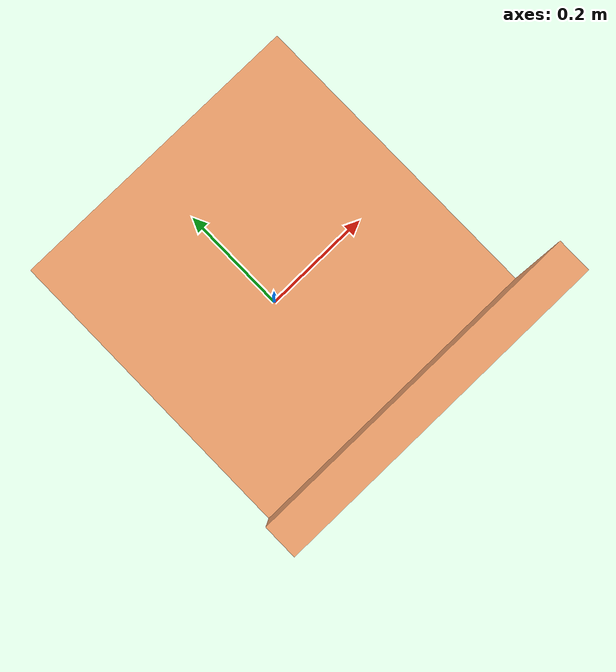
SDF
<?xml version="1.0"?>
<sdf version="1.6">
  <model name="chair">
    <static>true</static>
    <link name="chair_base">
      <!-- Seat -->
      <visual name="seat_visual">
        <geometry>
          <box>
            <size>0.5 0.5 0.05</size>
          </box>
        </geometry>
        <pose>0 0 0.45 0 0 0</pose>
        <material>
          <ambient>0.8 0.5 0.3 1</ambient>
          <diffuse>0.9 0.6 0.4 1</diffuse>
        </material>
      </visual>
      <collision name="seat_collision">
        <geometry>
          <box>
            <size>0.5 0.5 0.05</size>
          </box>
        </geometry>
        <pose>0 0 0.45 0 0 0</pose>
      </collision>

      <!-- Backrest -->
      <visual name="backrest_visual">
        <geometry>
          <box>
            <size>0.5 0.05 0.5</size>
          </box>
        </geometry>
        <pose>0 -0.275 0.7 0 0 0</pose>
        <material>
          <ambient>0.8 0.5 0.3 1</ambient>
          <diffuse>0.9 0.6 0.4 1</diffuse>
        </material>
      </visual>
      <collision name="backrest_collision">
        <geometry>
          <box>
            <size>0.5 0.05 0.5</size>
          </box>
        </geometry>
        <pose>0 -0.275 0.7 0 0 0</pose>
      </collision>

      <!-- Legs -->
      <visual name="leg1_visual">
        <geometry>
          <cylinder>
            <radius>0.025</radius>
            <length>0.45</length>
          </cylinder>
        </geometry>
        <pose>0.2 0.2 0.225 0 0 0</pose>
        <material>
          <ambient>0.5 0.5 0.5 1</ambient>
          <diffuse>0.6 0.6 0.6 1</diffuse>
        </material>
      </visual>
      <collision name="leg1_collision">
        <geometry>
          <cylinder>
            <radius>0.025</radius>
            <length>0.45</length>
          </cylinder>
        </geometry>
        <pose>0.2 0.2 0.225 0 0 0</pose>
      </collision>

      <visual name="leg2_visual">
        <geometry>
          <cylinder>
            <radius>0.025</radius>
            <length>0.45</length>
          </cylinder>
        </geometry>
        <pose>0.2 -0.2 0.225 0 0 0</pose>
        <material>
          <ambient>0.5 0.5 0.5 1</ambient>
          <diffuse>0.6 0.6 0.6 1</diffuse>
        </material>
      </visual>
      <collision name="leg2_collision">
        <geometry>
          <cylinder>
            <radius>0.025</radius>
            <length>0.45</length>
          </cylinder>
        </geometry>
        <pose>0.2 -0.2 0.225 0 0 0</pose>
      </collision>

      <visual name="leg3_visual">
        <geometry>
          <cylinder>
            <radius>0.025</radius>
            <length>0.45</length>
          </cylinder>
        </geometry>
        <pose>-0.2 0.2 0.225 0 0 0</pose>
        <material>
          <ambient>0.5 0.5 0.5 1</ambient>
          <diffuse>0.6 0.6 0.6 1</diffuse>
        </material>
      </visual>
      <collision name="leg3_collision">
        <geometry>
          <cylinder>
            <radius>0.025</radius>
            <length>0.45</length>
          </cylinder>
        </geometry>
        <pose>-0.2 0.2 0.225 0 0 0</pose>
      </collision>

      <visual name="leg4_visual">
        <geometry>
          <cylinder>
            <radius>0.025</radius>
            <length>0.45</length>
          </cylinder>
        </geometry>
        <pose>-0.2 -0.2 0.225 0 0 0</pose>
        <material>
          <ambient>0.5 0.5 0.5 1</ambient>
          <diffuse>0.6 0.6 0.6 1</diffuse>
        </material>
      </visual>
      <collision name="leg4_collision">
        <geometry>
          <cylinder>
            <radius>0.025</radius>
            <length>0.45</length>
          </cylinder>
        </geometry>
        <pose>-0.2 -0.2 0.225 0 0 0</pose>
      </collision>
    </link>
  </model>
</sdf>
